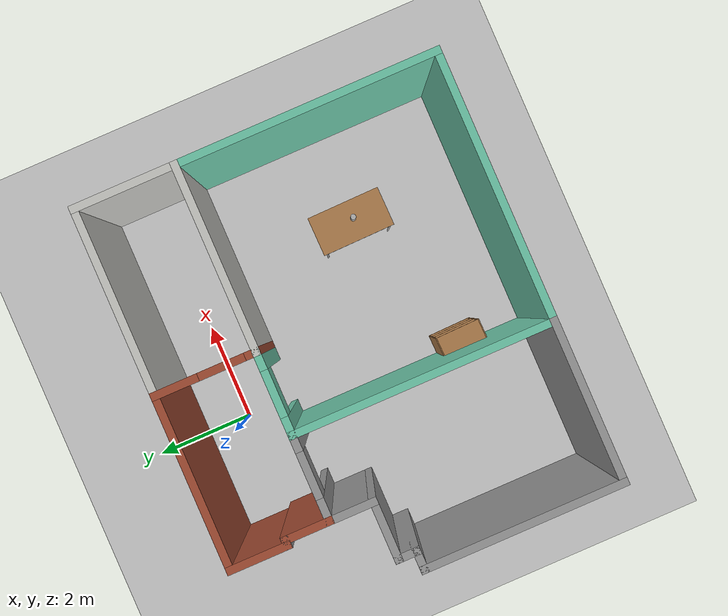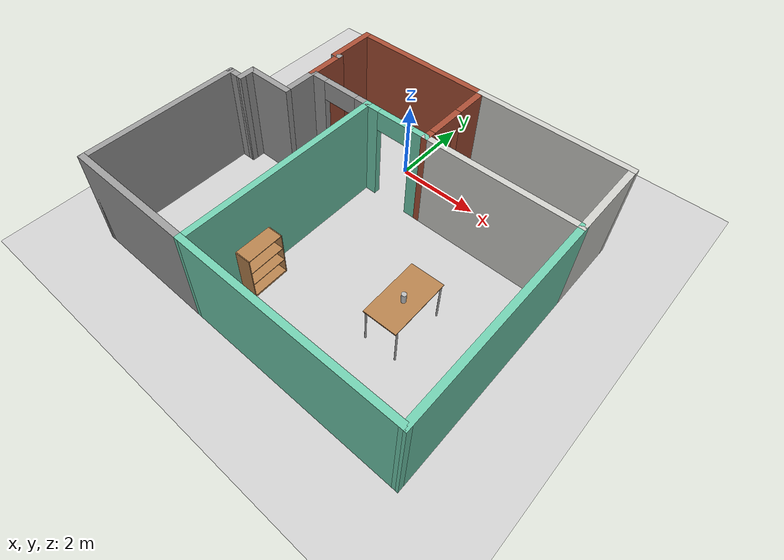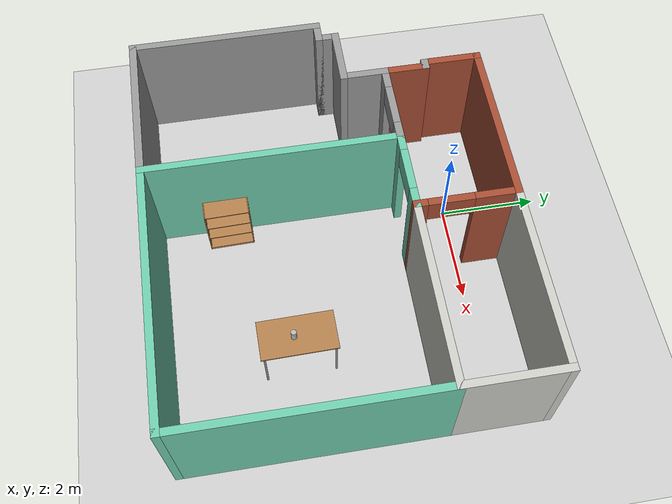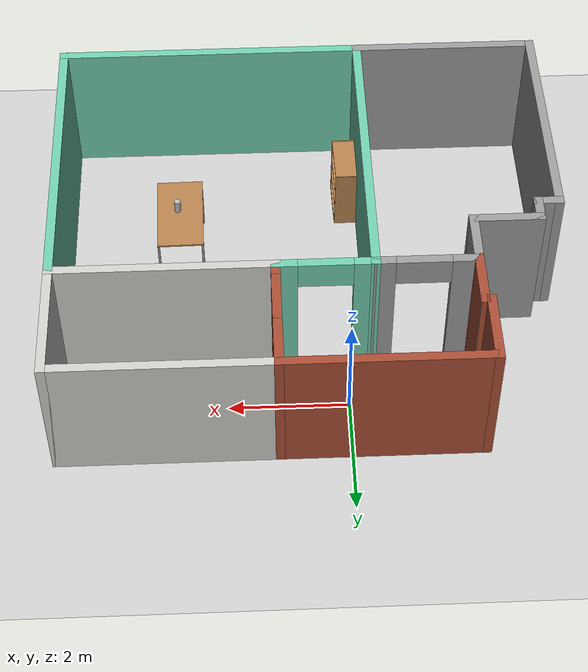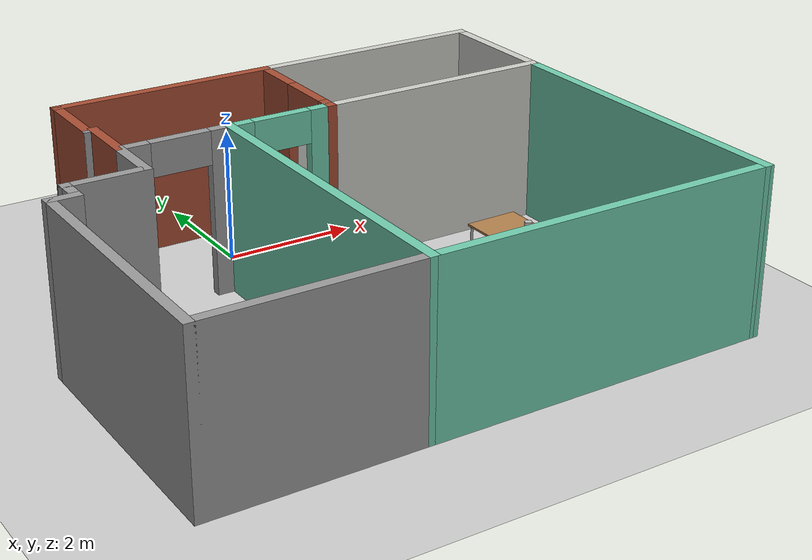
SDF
<sdf version="1.6">
 <world name="default">
  <model name="ground_plane">
   <static>1</static>
   <link name="link">
    <collision name="collision">
     <geometry><plane><normal>0 0 1</normal><size>100 100</size></plane></geometry>
     <surface><friction><ode><mu>100</mu><mu2>50</mu2></ode></friction></surface>
    </collision>
    <visual name="visual">
     <cast_shadows>0</cast_shadows>
     <geometry><plane><normal>0 0 1</normal><size>100 100</size></plane></geometry>
     <material>
      <script><uri>file://media/materials/scripts/gazebo.material</uri><name>Gazebo/Grey</name></script>
     </material>
    </visual>
   </link>
  </model>
  <model name="model">
   <pose>0.62405 -2.53382 0 0 -0 0</pose>
   <link name="Wall_24">
    <collision name="Wall_24_Collision">
     <geometry><box><size>1.25 0.15 2.5</size></box></geometry>
     <pose>0 0 1.25 0 -0 0</pose>
    </collision>
    <visual name="Wall_24_Visual">
     <pose>0 0 1.25 0 -0 0</pose>
     <geometry><box><size>1.25 0.15 2.5</size></box></geometry>
     <material>
      <script><uri>file://media/materials/scripts/gazebo.material</uri><name>Gazebo/Bricks</name></script>
      <ambient>1 1 1 1</ambient>
     </material>
     <meta><layer>0</layer></meta>
    </visual>
    <pose>-2.79996 2.95018 0 0 0 -1.5708</pose>
   </link>
   <link name="Wall_26">
    <collision name="Wall_26_Collision">
     <geometry><box><size>0.25 0.15 2.5</size></box></geometry>
     <pose>0 0 1.25 0 -0 0</pose>
    </collision>
    <visual name="Wall_26_Visual">
     <pose>0 0 1.25 0 -0 0</pose>
     <geometry><box><size>0.25 0.15 2.5</size></box></geometry>
     <material>
      <script><uri>file://media/materials/scripts/gazebo.material</uri><name>Gazebo/Grey</name></script>
      <ambient>1 1 1 1</ambient>
     </material>
     <meta><layer>0</layer></meta>
    </visual>
    <pose>-2.74996 2.40017 0 0 -0 0</pose>
   </link>
   <link name="Wall_27">
    <collision name="Wall_27_Collision">
     <geometry><box><size>1 0.15 2.5</size></box></geometry>
     <pose>0 0 1.25 0 -0 0</pose>
    </collision>
    <visual name="Wall_27_Visual">
     <pose>0 0 1.25 0 -0 0</pose>
     <geometry><box><size>1 0.15 2.5</size></box></geometry>
     <material>
      <script><uri>file://media/materials/scripts/gazebo.material</uri><name>Gazebo/Bricks</name></script>
      <ambient>1 1 1 1</ambient>
     </material>
     <meta><layer>0</layer></meta>
    </visual>
    <pose>-2.69996 1.97517 0 0 0 -1.5708</pose>
   </link>
   <link name="Wall_28">
    <pose>-1.89996 1.55018 0 0 -0 0</pose>
    <visual name="Wall_28_Visual_0">
     <pose>-0.625185 0 1.25 0 -0 0</pose>
     <geometry><box><size>0.49963 0.15 2.5</size></box></geometry>
     <material>
      <script><uri>file://media/materials/scripts/gazebo.material</uri><name>Gazebo/Grey</name></script>
      <ambient>1 1 1 1</ambient>
     </material>
     <meta><layer>0</layer></meta>
    </visual>
    <collision name="Wall_28_Collision_0">
     <geometry><box><size>0.49963 0.15 2.5</size></box></geometry>
     <pose>-0.625185 0 1.25 0 -0 0</pose>
    </collision>
    <visual name="Wall_28_Visual_1">
     <pose>0.699815 0 1.25 0 -0 0</pose>
     <geometry><box><size>0.35037 0.15 2.5</size></box></geometry>
     <material>
      <script><uri>file://media/materials/scripts/gazebo.material</uri><name>Gazebo/Grey</name></script>
      <ambient>1 1 1 1</ambient>
     </material>
     <meta><layer>0</layer></meta>
    </visual>
    <collision name="Wall_28_Collision_1">
     <geometry><box><size>0.35037 0.15 2.5</size></box></geometry>
     <pose>0.699815 0 1.25 0 -0 0</pose>
    </collision>
    <visual name="Wall_28_Visual_2">
     <pose>0.07463 0 2.25 0 -0 0</pose>
     <geometry><box><size>0.9 0.15 0.5</size></box></geometry>
     <material>
      <script><uri>file://media/materials/scripts/gazebo.material</uri><name>Gazebo/Grey</name></script>
      <ambient>1 1 1 1</ambient>
     </material>
     <meta><layer>0</layer></meta>
    </visual>
    <collision name="Wall_28_Collision_2">
     <geometry><box><size>0.9 0.15 0.5</size></box></geometry>
     <pose>0.07463 0 2.25 0 -0 0</pose>
    </collision>
   </link>
   <link name="Wall_30">
    <collision name="Wall_30_Collision">
     <geometry><box><size>1 0.15 2.5</size></box></geometry>
     <pose>0 0 1.25 0 -0 0</pose>
    </collision>
    <visual name="Wall_30_Visual">
     <pose>0 0 1.25 0 -0 0</pose>
     <geometry><box><size>1 0.15 2.5</size></box></geometry>
     <material>
      <script><uri>file://media/materials/scripts/gazebo.material</uri><name>Gazebo/Grey</name></script>
      <ambient>1 1 1 1</ambient>
     </material>
     <meta><layer>0</layer></meta>
    </visual>
    <pose>-2.69996 1.12518 0 0 0 -1.5708</pose>
   </link>
   <link name="Wall_32">
    <collision name="Wall_32_Collision">
     <geometry><box><size>1.25 0.15 2.5</size></box></geometry>
     <pose>0 0 1.25 0 -0 0</pose>
    </collision>
    <visual name="Wall_32_Visual">
     <pose>0 0 1.25 0 -0 0</pose>
     <geometry><box><size>1.25 0.15 2.5</size></box></geometry>
     <material>
      <script><uri>file://media/materials/scripts/gazebo.material</uri><name>Gazebo/Grey</name></script>
      <ambient>1 1 1 1</ambient>
     </material>
     <meta><layer>0</layer></meta>
    </visual>
    <pose>-3.24996 0.700175 0 0 -0 3.14159</pose>
   </link>
   <link name="Wall_33">
    <collision name="Wall_33_Collision">
     <geometry><box><size>0.5 0.15 2.5</size></box></geometry>
     <pose>0 0 1.25 0 -0 0</pose>
    </collision>
    <visual name="Wall_33_Visual">
     <pose>0 0 1.25 0 -0 0</pose>
     <geometry><box><size>0.5 0.15 2.5</size></box></geometry>
     <material>
      <script><uri>file://media/materials/scripts/gazebo.material</uri><name>Gazebo/Grey</name></script>
      <ambient>1 1 1 1</ambient>
     </material>
     <meta><layer>0</layer></meta>
    </visual>
    <pose>-3.79996 0.525175 0 0 0 -1.5708</pose>
   </link>
   <link name="Wall_34">
    <collision name="Wall_34_Collision">
     <geometry><box><size>0.5 0.15 2.5</size></box></geometry>
     <pose>0 0 1.25 0 -0 0</pose>
    </collision>
    <visual name="Wall_34_Visual">
     <pose>0 0 1.25 0 -0 0</pose>
     <geometry><box><size>0.5 0.15 2.5</size></box></geometry>
     <material>
      <script><uri>file://media/materials/scripts/gazebo.material</uri><name>Gazebo/Grey</name></script>
      <ambient>1 1 1 1</ambient>
     </material>
     <meta><layer>0</layer></meta>
    </visual>
    <pose>-3.97496 0.350175 0 0 -0 3.14159</pose>
   </link>
   <link name="Wall_35">
    <collision name="Wall_35_Collision">
     <geometry><box><size>4 0.15 2.5</size></box></geometry>
     <pose>0 0 1.25 0 -0 0</pose>
    </collision>
    <visual name="Wall_35_Visual">
     <pose>0 0 1.25 0 -0 0</pose>
     <geometry><box><size>4 0.15 2.5</size></box></geometry>
     <material>
      <script><uri>file://media/materials/scripts/gazebo.material</uri><name>Gazebo/Grey</name></script>
      <ambient>1 1 1 1</ambient>
     </material>
     <meta><layer>0</layer></meta>
    </visual>
    <pose>-4.14996 -1.57482 0 0 0 -1.5708</pose>
   </link>
   <link name="Wall_36">
    <collision name="Wall_36_Collision">
     <geometry><box><size>3.25 0.15 2.5</size></box></geometry>
     <pose>0 0 1.25 0 -0 0</pose>
    </collision>
    <visual name="Wall_36_Visual">
     <pose>0 0 1.25 0 -0 0</pose>
     <geometry><box><size>3.25 0.15 2.5</size></box></geometry>
     <material>
      <script><uri>file://media/materials/scripts/gazebo.material</uri><name>Gazebo/Grey</name></script>
      <ambient>1 1 1 1</ambient>
     </material>
     <meta><layer>0</layer></meta>
    </visual>
    <pose>-2.59996 -3.49982 0 0 -0 0</pose>
   </link>
   <link name="Wall_37">
    <collision name="Wall_37_Collision">
     <geometry><box><size>5.2 0.15 2.5</size></box></geometry>
     <pose>0 0 1.25 0 -0 0</pose>
    </collision>
    <visual name="Wall_37_Visual">
     <pose>0 0 1.25 0 -0 0</pose>
     <geometry><box><size>5.2 0.15 2.5</size></box></geometry>
     <material>
      <script><uri>file://media/materials/scripts/gazebo.material</uri><name>Gazebo/Grey</name></script>
      <ambient>0.435294 0.796078 0.67451 1</ambient>
     </material>
     <meta><layer>0</layer></meta>
    </visual>
    <pose>-1.04996 -0.974825 0 0 -0 1.5708</pose>
   </link>
   <link name="Wall_39">
    <pose>0.549953 2.52482 0 0 -0 1.5708</pose>
    <visual name="Wall_39_Visual_0">
     <pose>-0.906032 0 1.25 0 -0 0</pose>
     <geometry><box><size>0.288289 0.15 2.5</size></box></geometry>
     <material>
      <script><uri>file://media/materials/scripts/gazebo.material</uri><name>Gazebo/Bricks</name></script>
      <ambient>1 1 1 1</ambient>
     </material>
     <meta><layer>0</layer></meta>
    </visual>
    <collision name="Wall_39_Collision_0">
     <geometry><box><size>0.288289 0.15 2.5</size></box></geometry>
     <pose>-0.906032 0 1.25 0 -0 0</pose>
    </collision>
    <visual name="Wall_39_Visual_1">
     <pose>0.594145 0 1.25 0 -0 0</pose>
     <geometry><box><size>0.912064 0.15 2.5</size></box></geometry>
     <material>
      <script><uri>file://media/materials/scripts/gazebo.material</uri><name>Gazebo/Bricks</name></script>
      <ambient>1 1 1 1</ambient>
     </material>
     <meta><layer>0</layer></meta>
    </visual>
    <collision name="Wall_39_Collision_1">
     <geometry><box><size>0.912064 0.15 2.5</size></box></geometry>
     <pose>0.594145 0 1.25 0 -0 0</pose>
    </collision>
    <visual name="Wall_39_Visual_2">
     <pose>-0.311887 0 2.25 0 -0 0</pose>
     <geometry><box><size>0.9 0.15 0.5</size></box></geometry>
     <material>
      <script><uri>file://media/materials/scripts/gazebo.material</uri><name>Gazebo/Bricks</name></script>
      <ambient>1 1 1 1</ambient>
     </material>
     <meta><layer>0</layer></meta>
    </visual>
    <collision name="Wall_39_Collision_2">
     <geometry><box><size>0.9 0.15 0.5</size></box></geometry>
     <pose>-0.311887 0 2.25 0 -0 0</pose>
    </collision>
   </link>
   <link name="Wall_41">
    <collision name="Wall_41_Collision">
     <geometry><box><size>3.5 0.15 2.5</size></box></geometry>
     <pose>0 0 1.25 0 -0 0</pose>
    </collision>
    <visual name="Wall_41_Visual">
     <pose>0 0 1.25 0 -0 0</pose>
     <geometry><box><size>3.5 0.15 2.5</size></box></geometry>
     <material>
      <script><uri>file://media/materials/scripts/gazebo.material</uri><name>Gazebo/Bricks</name></script>
      <ambient>1 1 1 1</ambient>
     </material>
     <meta><layer>0</layer></meta>
    </visual>
    <pose>-1.125 3.5 0 0 -0 3.14149</pose>
   </link>
   <link name="Wall_44">
    <pose>-0.250002 1.55 0 0 0 -0.000221</pose>
    <visual name="Wall_44_Visual_0">
     <pose>-0.664415 0 1.25 0 -0 0</pose>
     <geometry><box><size>0.42108 0.15 2.5</size></box></geometry>
     <material>
      <script><uri>file://media/materials/scripts/gazebo.material</uri><name>Gazebo/Grey</name></script>
      <ambient>0.435294 0.796078 0.67451 1</ambient>
     </material>
     <meta><layer>0</layer></meta>
    </visual>
    <collision name="Wall_44_Collision_0">
     <geometry><box><size>0.42108 0.15 2.5</size></box></geometry>
     <pose>-0.664415 0 1.25 0 -0 0</pose>
    </collision>
    <visual name="Wall_44_Visual_1">
     <pose>0.66054 0 1.25 0 -0 0</pose>
     <geometry><box><size>0.42883 0.15 2.5</size></box></geometry>
     <material>
      <script><uri>file://media/materials/scripts/gazebo.material</uri><name>Gazebo/Grey</name></script>
      <ambient>0.435294 0.796078 0.67451 1</ambient>
     </material>
     <meta><layer>0</layer></meta>
    </visual>
    <collision name="Wall_44_Collision_1">
     <geometry><box><size>0.42883 0.15 2.5</size></box></geometry>
     <pose>0.66054 0 1.25 0 -0 0</pose>
    </collision>
    <visual name="Wall_44_Visual_2">
     <pose>-0.003875 0 2.25 0 -0 0</pose>
     <geometry><box><size>0.9 0.15 0.5</size></box></geometry>
     <material>
      <script><uri>file://media/materials/scripts/gazebo.material</uri><name>Gazebo/Grey</name></script>
      <ambient>0.435294 0.796078 0.67451 1</ambient>
     </material>
     <meta><layer>0</layer></meta>
    </visual>
    <collision name="Wall_44_Collision_2">
     <geometry><box><size>0.9 0.15 0.5</size></box></geometry>
     <pose>-0.003875 0 2.25 0 -0 0</pose>
    </collision>
   </link>
   <link name="Wall_45">
    <collision name="Wall_45_Collision">
     <geometry><box><size>3.75 0.15 2.5</size></box></geometry>
     <pose>0 0 1.25 0 -0 0</pose>
    </collision>
    <visual name="Wall_45_Visual">
     <pose>0 0 1.25 0 -0 0</pose>
     <geometry><box><size>3.75 0.15 2.5</size></box></geometry>
     <material>
      <script><uri>file://media/materials/scripts/gazebo.material</uri><name>Gazebo/CeilingTiled</name></script>
      <ambient>0.435294 0.796078 0.67451 1</ambient>
     </material>
     <meta><layer>0</layer></meta>
    </visual>
    <pose>2.34995 1.54982 0 0 -0 0</pose>
   </link>
   <link name="Wall_46">
    <collision name="Wall_46_Collision">
     <geometry><box><size>2.1 0.15 2.5</size></box></geometry>
     <pose>0 0 1.25 0 -0 0</pose>
    </collision>
    <visual name="Wall_46_Visual">
     <pose>0 0 1.25 0 -0 0</pose>
     <geometry><box><size>2.1 0.15 2.5</size></box></geometry>
     <material>
      <script><uri>file://media/materials/scripts/gazebo.material</uri><name>Gazebo/CeilingTiled</name></script>
      <ambient>1 1 1 1</ambient>
     </material>
     <meta><layer>0</layer></meta>
    </visual>
    <pose>4.14995 2.52482 0 0 -0 1.5708</pose>
   </link>
   <link name="Wall_48">
    <collision name="Wall_48_Collision">
     <geometry><box><size>3.75 0.15 2.5</size></box></geometry>
     <pose>0 0 1.25 0 -0 0</pose>
    </collision>
    <visual name="Wall_48_Visual">
     <pose>0 0 1.25 0 -0 0</pose>
     <geometry><box><size>3.75 0.15 2.5</size></box></geometry>
     <material>
      <script><uri>file://media/materials/scripts/gazebo.material</uri><name>Gazebo/CeilingTiled</name></script>
      <ambient>1 1 1 1</ambient>
     </material>
     <meta><layer>0</layer></meta>
    </visual>
    <pose>2.34995 3.49982 0 0 -0 0</pose>
   </link>
   <link name="Wall_50">
    <collision name="Wall_50_Collision">
     <geometry><box><size>5.2 0.15 2.5</size></box></geometry>
     <pose>0 0 1.25 0 -0 0</pose>
    </collision>
    <visual name="Wall_50_Visual">
     <pose>0 0 1.25 0 -0 0</pose>
     <geometry><box><size>5.2 0.15 2.5</size></box></geometry>
     <material>
      <script><uri>file://media/materials/scripts/gazebo.material</uri><name>Gazebo/Grey</name></script>
      <ambient>0.435294 0.796078 0.67451 1</ambient>
     </material>
     <meta><layer>0</layer></meta>
    </visual>
    <pose>4.14995 -0.975178 0 0 0 -1.5708</pose>
   </link>
   <link name="Wall_52">
    <collision name="Wall_52_Collision">
     <geometry><box><size>5.34991 0.15 2.5</size></box></geometry>
     <pose>0 0 1.25 0 -0 0</pose>
    </collision>
    <visual name="Wall_52_Visual">
     <pose>0 0 1.25 0 -0 0</pose>
     <geometry><box><size>5.34991 0.15 2.5</size></box></geometry>
     <material>
      <script><uri>file://media/materials/scripts/gazebo.material</uri><name>Gazebo/Grey</name></script>
      <ambient>0.435294 0.796078 0.67451 1</ambient>
     </material>
     <meta><layer>0</layer></meta>
    </visual>
    <pose>1.55 -3.5 0 0 0 -6.8e-05</pose>
   </link>
   <static>1</static>
  </model>
  <model name="bookshelf">
   <static>1</static>
   <link name="link">
    <inertial><mass>1</mass></inertial>
    <collision name="back">
     <pose>0 0.005 0.6 0 -0 0</pose>
     <geometry><box><size>0.9 0.01 1.2</size></box></geometry>
    </collision>
    <visual name="visual1">
     <pose>0 0.005 0.6 0 -0 0</pose>
     <geometry><box><size>0.9 0.01 1.2</size></box></geometry>
     <material>
      <script><uri>file://media/materials/scripts/gazebo.material</uri><name>Gazebo/Wood</name></script>
     </material>
    </visual>
    <collision name="left_side">
     <pose>0.45 -0.195 0.6 0 -0 0</pose>
     <geometry><box><size>0.02 0.4 1.2</size></box></geometry>
    </collision>
    <visual name="visual2">
     <pose>0.45 -0.195 0.6 0 -0 0</pose>
     <geometry><box><size>0.02 0.4 1.2</size></box></geometry>
     <material>
      <script><uri>file://media/materials/scripts/gazebo.material</uri><name>Gazebo/Wood</name></script>
     </material>
    </visual>
    <collision name="right_side">
     <pose>-0.45 -0.195 0.6 0 -0 0</pose>
     <geometry><box><size>0.02 0.4 1.2</size></box></geometry>
    </collision>
    <visual name="visual3">
     <pose>-0.45 -0.195 0.6 0 -0 0</pose>
     <geometry><box><size>0.02 0.4 1.2</size></box></geometry>
     <material>
      <script><uri>file://media/materials/scripts/gazebo.material</uri><name>Gazebo/Wood</name></script>
     </material>
    </visual>
    <collision name="bottom">
     <pose>0 -0.195 0.03 0 -0 0</pose>
     <geometry><box><size>0.88 0.4 0.06</size></box></geometry>
    </collision>
    <visual name="visual4">
     <pose>0 -0.195 0.03 0 -0 0</pose>
     <geometry><box><size>0.88 0.4 0.06</size></box></geometry>
     <material>
      <script><uri>file://media/materials/scripts/gazebo.material</uri><name>Gazebo/Wood</name></script>
     </material>
    </visual>
    <collision name="top">
     <pose>0 -0.195 1.19 0 -0 0</pose>
     <geometry><box><size>0.88 0.4 0.02</size></box></geometry>
    </collision>
    <visual name="visual5">
     <pose>0 -0.195 1.19 0 -0 0</pose>
     <geometry><box><size>0.88 0.4 0.02</size></box></geometry>
     <material>
      <script><uri>file://media/materials/scripts/gazebo.material</uri><name>Gazebo/Wood</name></script>
     </material>
    </visual>
    <collision name="low_shelf">
     <pose>0 -0.195 0.43 0 -0 0</pose>
     <geometry><box><size>0.88 0.4 0.02</size></box></geometry>
    </collision>
    <visual name="visual6">
     <pose>0 -0.195 0.43 0 -0 0</pose>
     <geometry><box><size>0.88 0.4 0.02</size></box></geometry>
     <material>
      <script><uri>file://media/materials/scripts/gazebo.material</uri><name>Gazebo/Wood</name></script>
     </material>
    </visual>
    <collision name="high_shelf">
     <pose>0 -0.195 0.8 0 -0 0</pose>
     <geometry><box><size>0.88 0.4 0.02</size></box></geometry>
    </collision>
    <visual name="visual7">
     <pose>0 -0.195 0.8 0 -0 0</pose>
     <geometry><box><size>0.88 0.4 0.02</size></box></geometry>
     <material>
      <script><uri>file://media/materials/scripts/gazebo.material</uri><name>Gazebo/Wood</name></script>
     </material>
    </visual>
   </link>
   <pose>-0.347308 -4.57508 -0.023969 -0.012585 0.000268 1.59207</pose>
  </model>
  <model name="table">
   <static>1</static>
   <link name="link">
    <collision name="surface">
     <pose>0 0 1 0 -0 0</pose>
     <geometry><box><size>1.5 0.8 0.03</size></box></geometry>
     <surface><friction><ode><mu>0.6</mu><mu2>0.6</mu2></ode></friction></surface>
    </collision>
    <visual name="visual1">
     <pose>0 0 1 0 -0 0</pose>
     <geometry><box><size>1.5 0.8 0.03</size></box></geometry>
     <material>
      <script><uri>file://media/materials/scripts/gazebo.material</uri><name>Gazebo/Wood</name></script>
     </material>
    </visual>
    <collision name="front_left_leg">
     <pose>0.68 0.38 0.5 0 -0 0</pose>
     <geometry><cylinder><radius>0.02</radius><length>1</length></cylinder></geometry>
    </collision>
    <visual name="front_left_leg">
     <pose>0.68 0.38 0.5 0 -0 0</pose>
     <geometry><cylinder><radius>0.02</radius><length>1</length></cylinder></geometry>
     <material>
      <script><uri>file://media/materials/scripts/gazebo.material</uri><name>Gazebo/Grey</name></script>
     </material>
    </visual>
    <collision name="front_right_leg">
     <pose>0.68 -0.38 0.5 0 -0 0</pose>
     <geometry><cylinder><radius>0.02</radius><length>1</length></cylinder></geometry>
    </collision>
    <visual name="front_right_leg">
     <pose>0.68 -0.38 0.5 0 -0 0</pose>
     <geometry><cylinder><radius>0.02</radius><length>1</length></cylinder></geometry>
     <material>
      <script><uri>file://media/materials/scripts/gazebo.material</uri><name>Gazebo/Grey</name></script>
     </material>
    </visual>
    <collision name="back_right_leg">
     <pose>-0.68 -0.38 0.5 0 -0 0</pose>
     <geometry><cylinder><radius>0.02</radius><length>1</length></cylinder></geometry>
    </collision>
    <visual name="back_right_leg">
     <pose>-0.68 -0.38 0.5 0 -0 0</pose>
     <geometry><cylinder><radius>0.02</radius><length>1</length></cylinder></geometry>
     <material>
      <script><uri>file://media/materials/scripts/gazebo.material</uri><name>Gazebo/Grey</name></script>
     </material>
    </visual>
    <collision name="back_left_leg">
     <pose>-0.68 0.38 0.5 0 -0 0</pose>
     <geometry><cylinder><radius>0.02</radius><length>1</length></cylinder></geometry>
    </collision>
    <visual name="back_left_leg">
     <pose>-0.68 0.38 0.5 0 -0 0</pose>
     <geometry><cylinder><radius>0.02</radius><length>1</length></cylinder></geometry>
     <material>
      <script><uri>file://media/materials/scripts/gazebo.material</uri><name>Gazebo/Grey</name></script>
     </material>
    </visual>
   </link>
   <pose>2.77913 -3.51265 0 0 -0 1.58618</pose>
  </model>
  <model name="beer">
   <link name="link">
    <pose>0 0 0.115 0 -0 0</pose>
    <inertial>
     <mass>0.39</mass>
     <inertia><ixx>0.00058</ixx><ixy>0</ixy><ixz>0</ixz><iyy>0.00058</iyy><iyz>0</iyz><izz>0.00019</izz></inertia>
    </inertial>
    <collision name="collision">
     <geometry><cylinder><radius>0.055</radius><length>0.23</length></cylinder></geometry>
    </collision>
    <visual name="visual">
     <geometry><cylinder><radius>0.055</radius><length>0.23</length></cylinder></geometry>
     <material>
      <script>
       <uri>model://beer/materials/scripts</uri>
       <uri>model://beer/materials/textures</uri>
       <name>Beer/Diffuse</name>
      </script>
     </material>
    </visual>
   </link>
   <pose>2.8157 -3.57932 1.01499 6e-06 -1.1e-05 0.004448</pose>
  </model>
 </world>
</sdf>
